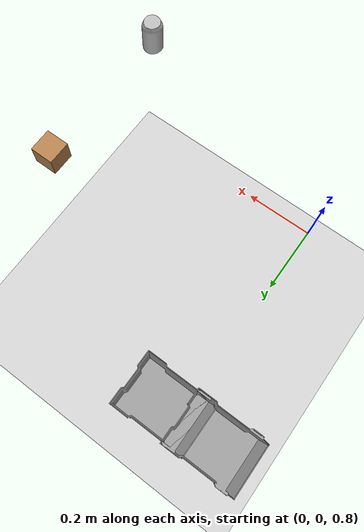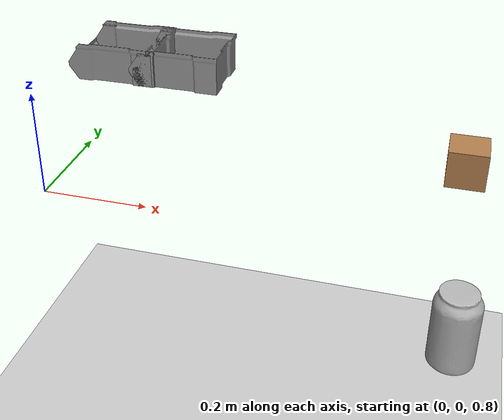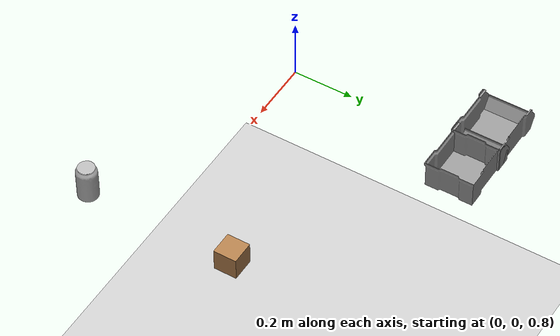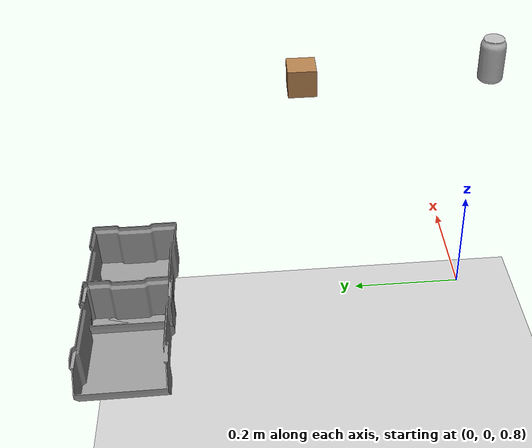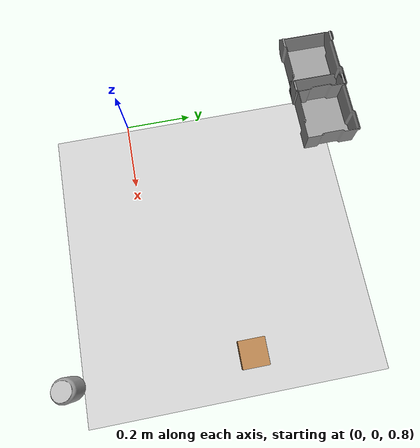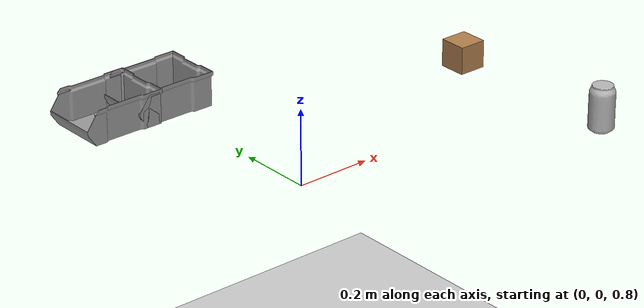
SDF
<sdf version="1.4">
 <world name="default">
  <include><uri>model://ground_plane</uri></include>
  <include><uri>model://sun</uri></include>
  <include><uri>model://wood_cube_7_5cm</uri><name>cube</name><pose>0.75 0.25 0.8 0 0 0</pose></include>
  <include><uri>model://coke_can</uri><name>coke</name><pose>0.75 -0.25 0.8 0 0 0</pose></include>
  <include><uri>model://stack_box</uri><name>stackbox1</name><pose>0 0.75 0.8 0 0 0</pose></include>
  <include><uri>model://stack_box</uri><name>stackbox2</name><pose>0.16 0.75 0.8 0 0 0</pose></include>
 </world>
</sdf>

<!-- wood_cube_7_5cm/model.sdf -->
<sdf version="1.5">
  <model name="wood_cube_7_5cm">
    <link name="link">
      <pose>0 0 0.0375 0 0 0</pose>
      <inertial>
        <mass>0.25</mass>
        <inertia>
          <ixx>0.00021084374999999999</ixx>
          <ixy>0</ixy>
          <ixz>0</ixz>
          <iyy>0.00021084374999999999</iyy>
          <iyz>0</iyz>
          <izz>0.00021084374999999999</izz>
        </inertia>
      </inertial>

      <collision name="collision">
        <geometry>
          <box>
            <size>0.075 0.075 0.075</size>
          </box>
        </geometry>
        <surface>
          <contact>
            <!-- Red Pine coefficients for longitudinal axis of the wood
                 according to:
                 http://www.fpl.fs.fed.us/documnts/fplgtr/fplgtr113/ch04.pdf -->
            <poissons_ratio>0.347</poissons_ratio>
            <elastic_modulus>8.8e+09</elastic_modulus>
            <ode>
              <kp>100000</kp>
              <kd>100</kd>
              <max_vel>100.0</max_vel>
              <min_depth>0.001</min_depth>
            </ode>
          </contact>
          <friction>
            <torsional>
              <coefficient>1.0</coefficient>
              <use_patch_radius>0</use_patch_radius>
              <surface_radius>0.01</surface_radius>
            </torsional>
          </friction>
        </surface>
      </collision>

      <visual name="visual">
        <geometry>
          <box>
            <size>0.075 0.075 0.075</size>
          </box>
        </geometry>
        <material>
          <script>
            <uri>file://media/materials/scripts/gazebo.material</uri>
            <name>Gazebo/Wood</name>
          </script>
        </material>
      </visual>

    </link>
  </model>
</sdf>

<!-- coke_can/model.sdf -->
<sdf version="1.5">
  <model name="coke_can">
    <link name="link">
      <inertial>
        <pose>0 0 0.06 0 0 0</pose>
        <mass>0.15</mass>
        <inertia>
          <ixx>0.00055575</ixx>
          <ixy>0</ixy>
          <ixz>0</ixz>
          <iyy>0.00055575</iyy>
          <iyz>0</iyz>
          <izz>0.0001755</izz>
        </inertia>
      </inertial>
      <collision name="collision">
        <pose>0.003937 0.0047244 -0.18 0 0 0</pose>
        <geometry>
          <mesh>
            <uri>model://coke_can/meshes/coke_can.dae</uri>
          </mesh>
        </geometry>
        <surface>
          <friction>
            <ode>
              <mu>1.0</mu>
              <mu2>1.0</mu2>
            </ode>
          </friction>
          <contact>
            <ode>
              <kp>10000000.0</kp>
              <kd>1.0</kd>
              <min_depth>0.001</min_depth>
              <max_vel>0.1</max_vel>
            </ode>
          </contact>
        </surface>
      </collision>
      <visual name="visual">
        <pose>0.003937 0.0047244 -0.18 0 0 0</pose>
        <geometry>
          <mesh>
            <uri>model://coke_can/meshes/coke_can.dae</uri>
          </mesh>
        </geometry>
      </visual>
    </link>
  </model>
</sdf>

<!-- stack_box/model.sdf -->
<sdf version='1.4'>
  <model name='stack_box'>
    <link name='link_0'>
      <inertial>
        <mass>1</mass>
        <inertia>
          <ixx>0.001</ixx>
          <ixy>0</ixy>
          <ixz>0</ixz>
          <iyy>0.001</iyy>
          <iyz>0</iyz>
          <izz>0.001</izz>
        </inertia>
        <pose frame=''>0 0 0 0 -0 0</pose>
      </inertial>
      <pose frame=''>0 -0 0 0 -0 0</pose>
      <gravity>1</gravity>
      <self_collide>0</self_collide>
      <kinematic>0</kinematic>
      <enable_wind>0</enable_wind>
      <visual name='visual'>
        <pose frame=''>0 0 0 0 -0 0</pose>
        <geometry>
          <mesh>
            <uri>/home/felix/catkin_ws/src/fetch_gazebo/fetch_gazebo/worlds/media/stack_box.stl</uri>
            <scale>0.002 0.002 0.002</scale>
          </mesh>
        </geometry>
        <material>
          <lighting>1</lighting>
          <script>
            <uri>file://media/materials/scripts/gazebo.material</uri>
            <name>Gazebo/Grey</name>
          </script>
          <shader type='vertex'>
            <normal_map>__default__</normal_map>
          </shader>
          <ambient>0.3 0.3 0.3 1</ambient>
          <diffuse>0.7 0.7 0.7 1</diffuse>
          <specular>0.01 0.01 0.01 1</specular>
          <emissive>0 0 0 1</emissive>
        </material>
        <transparency>0</transparency>
        <cast_shadows>1</cast_shadows>
      </visual>
      <collision name='collision'>
        <laser_retro>0</laser_retro>
        <max_contacts>10</max_contacts>
        <pose frame=''>0 0 0 0 -0 0</pose>
        <geometry>
          <mesh>
            <uri>/home/felix/catkin_ws/src/fetch_gazebo/fetch_gazebo/worlds/media/stack_box.stl</uri>
            <scale>0.002 0.002 0.002</scale>
          </mesh>
        </geometry>
        <surface>
          <friction>
            <ode>
              <mu>1</mu>
              <mu2>1</mu2>
              <fdir1>0 0 0</fdir1>
              <slip1>0</slip1>
              <slip2>0</slip2>
            </ode>
            <torsional>
              <coefficient>1</coefficient>
              <patch_radius>0</patch_radius>
              <surface_radius>0</surface_radius>
              <use_patch_radius>1</use_patch_radius>
              <ode>
                <slip>0</slip>
              </ode>
            </torsional>
          </friction>
          <bounce>
            <restitution_coefficient>0</restitution_coefficient>
            <threshold>1e+06</threshold>
          </bounce>
          <contact>
            <collide_without_contact>0</collide_without_contact>
            <collide_without_contact_bitmask>1</collide_without_contact_bitmask>
            <collide_bitmask>1</collide_bitmask>
            <ode>
              <soft_cfm>0</soft_cfm>
              <soft_erp>0.2</soft_erp>
              <kp>1e+13</kp>
              <kd>1</kd>
              <max_vel>0.01</max_vel>
              <min_depth>0</min_depth>
            </ode>
            <bullet>
              <split_impulse>1</split_impulse>
              <split_impulse_penetration_threshold>-0.01</split_impulse_penetration_threshold>
              <soft_cfm>0</soft_cfm>
              <soft_erp>0.2</soft_erp>
              <kp>1e+13</kp>
              <kd>1</kd>
            </bullet>
          </contact>
        </surface>
      </collision>
    </link>
    <static>0</static>
    <allow_auto_disable>1</allow_auto_disable>
  </model>
</sdf>
